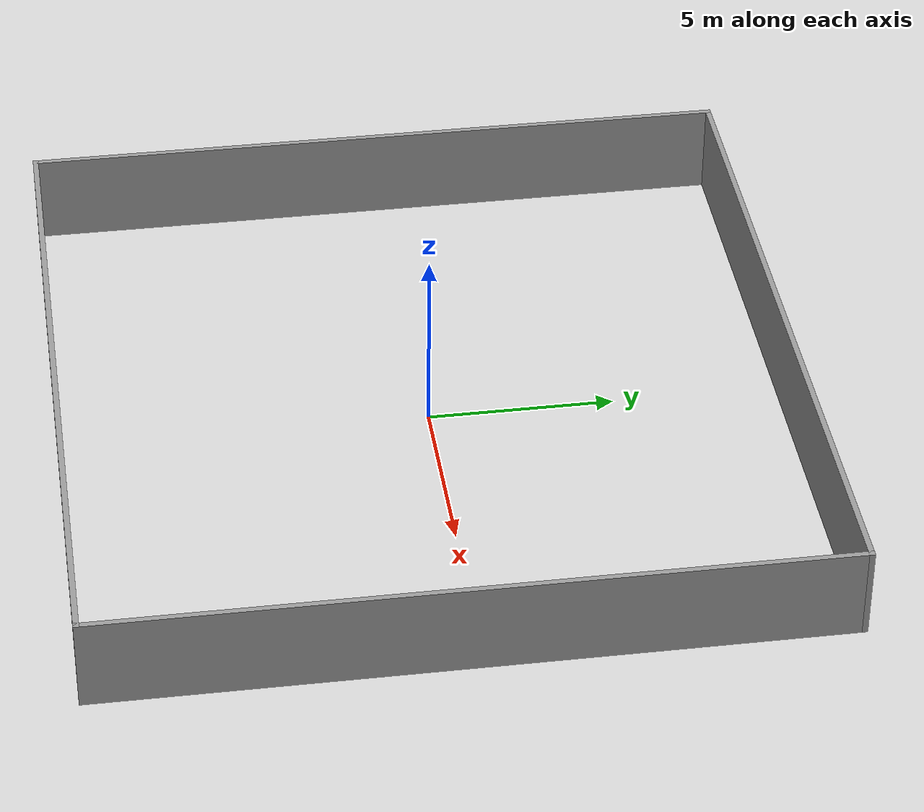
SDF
<?xml version='1.0'?>
<sdf version='1.7'>
  <model name='wall'>
    <pose>0.002652 -0.168466 0 0 -0 0</pose>
    <link name='Wall_1'>
      <collision name='Wall_1_Collision'>
        <geometry>
          <box>
            <size>19.5 0.15 2.5</size>
          </box>
        </geometry>
        <pose>0 0 1.25 0 -0 0</pose>
      </collision>
      <visual name='Wall_1_Visual'>
        <pose>0 0 1.25 0 -0 0</pose>
        <geometry>
          <box>
            <size>19.5 0.15 2.5</size>
          </box>
        </geometry>
        <material>
          <script>
            <uri>file://media/materials/scripts/gazebo.material</uri>
            <name>Gazebo/Grey</name>
          </script>
          <ambient>1 1 1 1</ambient>
        </material>
        <meta>
          <layer>0</layer>
        </meta>
      </visual>
      <pose>-9.925 -0 0 0 -0 -1.5708</pose>
    </link>
    <link name='Wall_4'>
      <collision name='Wall_4_Collision'>
        <geometry>
          <box>
            <size>20 0.15 2.5</size>
          </box>
        </geometry>
        <pose>0 0 1.25 0 -0 0</pose>
      </collision>
      <visual name='Wall_4_Visual'>
        <pose>0 0 1.25 0 -0 0</pose>
        <geometry>
          <box>
            <size>20 0.15 2.5</size>
          </box>
        </geometry>
        <material>
          <script>
            <uri>file://media/materials/scripts/gazebo.material</uri>
            <name>Gazebo/Grey</name>
          </script>
          <ambient>1 1 1 1</ambient>
        </material>
        <meta>
          <layer>0</layer>
        </meta>
      </visual>
      <pose>0 -9.675 0 0 -0 0</pose>
    </link>
    <link name='Wall_6'>
      <collision name='Wall_6_Collision'>
        <geometry>
          <box>
            <size>19.5 0.15 2.5</size>
          </box>
        </geometry>
        <pose>0 0 1.25 0 -0 0</pose>
      </collision>
      <visual name='Wall_6_Visual'>
        <pose>0 0 1.25 0 -0 0</pose>
        <geometry>
          <box>
            <size>19.5 0.15 2.5</size>
          </box>
        </geometry>
        <material>
          <script>
            <uri>file://media/materials/scripts/gazebo.material</uri>
            <name>Gazebo/Grey</name>
          </script>
          <ambient>1 1 1 1</ambient>
        </material>
        <meta>
          <layer>0</layer>
        </meta>
      </visual>
      <pose>9.925 -0 0 0 -0 1.5708</pose>
    </link>
    <link name='Wall_7'>
      <collision name='Wall_7_Collision'>
        <geometry>
          <box>
            <size>20 0.15 2.5</size>
          </box>
        </geometry>
        <pose>0 0 1.25 0 -0 0</pose>
      </collision>
      <visual name='Wall_7_Visual'>
        <pose>0 0 1.25 0 -0 0</pose>
        <geometry>
          <box>
            <size>20 0.15 2.5</size>
          </box>
        </geometry>
        <material>
          <script>
            <uri>file://media/materials/scripts/gazebo.material</uri>
            <name>Gazebo/Grey</name>
          </script>
          <ambient>1 1 1 1</ambient>
        </material>
        <meta>
          <layer>0</layer>
        </meta>
      </visual>
      <pose>0 9.675 0 0 -0 3.14159</pose>
    </link>
    <static>1</static>
  </model>
</sdf>
